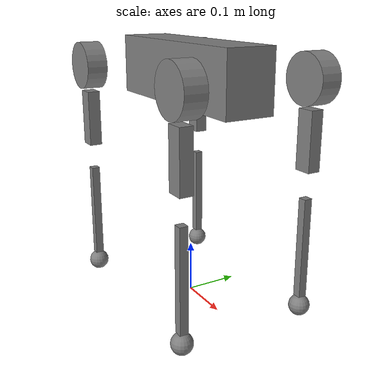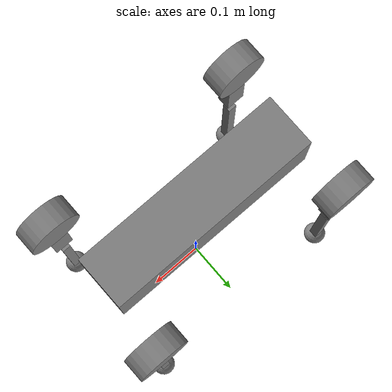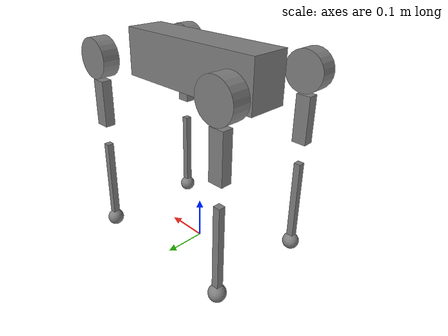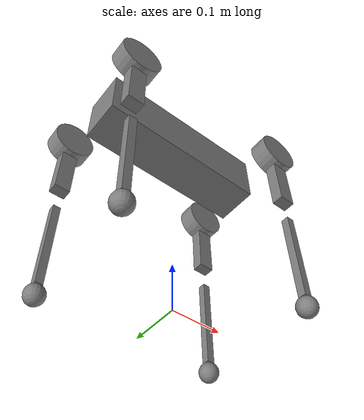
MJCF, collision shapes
<mujoco model="go1">
  <compiler angle="radian" meshdir="assets" autolimits="true"/>

  <default>
    <default class="go1">
      <default class="visual">
        <geom type="mesh" contype="0" conaffinity="0" group="2" material="dark"/>
      </default>
      <default class="collision">
        <geom group="3" contype="1" conaffinity="1"/>
        <default class="foot">
          <geom type="sphere" size="0.02"/>
        </default>
      </default>
    </default>
  </default>

  <asset>
    <material name="dark" rgba="0.2 0.2 0.2 1"/>

    <mesh class="go1" file="trunk.stl"/>
    <mesh class="go1" file="hip.stl"/>
    <mesh class="go1" file="thigh_mirror.stl"/>
    <mesh class="go1" file="calf.stl"/>
    <mesh class="go1" file="thigh.stl"/>
  </asset>

  <worldbody>
    <body name="base_link" pos="0 0 0.445" childclass="go1">
      <light pos="0 0 2" mode="trackcom"/>
      <camera name="tracking" pos="0.846 -1.3 0.316" xyaxes="0.866 0.500 0.000 -0.171 0.296 0.940" mode="trackcom"/>
      <camera name="top" pos="-1 0 1" xyaxes="0 -1 0 0.7 0 0.7" mode="trackcom"/>
      <camera name="side" pos="0 -1 .3" xyaxes="1 0 0 0 1 2" mode="trackcom"/>
      <camera name="back" pos="-1 0 .3" xyaxes="0 -1 0 1 0 2" mode="trackcom"/>
      <site name="head" pos="0.3 0 0" rgba="1 0 0 1" size="0.02" group="5"/>
      <inertial pos="0.0208661571134 0.00185967204212 -0.000469178990412" mass="5.56108"
        fullinertia="0.0181527417149 0.0680031785695 0.0774325305993 -0.000247077627157 -0.000291003623566 -4.19232897954e-05"/>
      <freejoint name="floating_base_joint"/>
      <geom class="visual" mesh="trunk"/>
      <geom name="trunk_collision" class="collision" type="box" size="0.1881 0.04675 0.057" pos="0 0 0"/>
      <site name="imu" pos="-0.01592 -0.06659 -0.00617" group="5"/>
      <body name="FR_hip" pos="0.1881 -0.04675 0">
        <inertial pos="-0.00491659852941 0.00762615 -8.865e-05" mass="0.68"
          fullinertia="0.000399379785729 0.000733419392376 0.000468422090576 1.45901056689e-05 1.24609911855e-06 -1.5753255103e-06"/>
        <joint name="FR_hip_joint" axis="1 0 0" range="-0.863 0.863"/>
        <geom class="visual" mesh="hip" quat="1 0 0 0"/>
        <geom name="FR_hip_collision" class="collision" type="cylinder" pos="0 -0.08 0"
          quat="0.70710678 0.70710678 0 0" size="0.046 0.02"/>
        <body name="FR_thigh" pos="0 -0.08 0">
          <inertial pos="-0.00304721506442 0.0193149950446 -0.0305004162537" mass="1.009"
            fullinertia="0.00459879646109 0.0046892240623 0.000817447856899 -6.13739128039e-05 -0.00022752911681 -0.000610808286618"/>
          <joint name="FR_thigh_joint" axis="0 1 0" range="-0.686 4.501"/>
          <geom class="visual" mesh="thigh_mirror"/>
          <geom name="FR_thigh_collision" class="collision" type="box" pos="0 0 -0.1065"
            quat="0.70710678 0 0.70710678 0" size="0.055 0.01225 0.017"/>
          <body name="FR_calf" pos="0 0 -0.213">
            <inertial pos="0.006197 0.001408 -0.116695" mass="0.135862"
              fullinertia="0.001088793059 0.001100428748 2.4787446e-05 -2.55679e-07 7.117814e-06 2.077264e-06"/>
            <joint name="FR_calf_joint" axis="0 1 0" range="-2.818 -0.888"/>
            <geom class="visual" mesh="calf"/>
            <geom name="FR_calf_collision" class="collision" type="box" pos="0 0 -0.0965"
              quat="0.70710678 0 0.70710678 0" size="0.0965 0.008 0.008"/>
            <site name="FR_site" pos="0 0 -0.213" type="sphere" size="0.023" group="5"/>
            <body name="FR_foot" pos="0 0 -0.213">
              <inertial pos="0 0 0" mass="0.06"
                fullinertia="9.600000000000001e-06 9.600000000000001e-06 9.600000000000001e-06 0 0 0"/>
              <geom name="FR" class="foot"/>
            </body>
          </body>
        </body>
      </body>
      <body name="FL_hip" pos="0.1881 0.04675 0">
        <inertial pos="-0.00491659852941 -0.00762615 -8.865e-05" mass="0.68"
          fullinertia="0.000399379785729 0.000733419392376 0.000468422090576 -1.45901056689e-05 1.24609911855e-06 1.5753255103e-06"/>
        <joint name="FL_hip_joint" axis="1 0 0" range="-0.863 0.863"/>
        <geom class="visual" mesh="hip"/>
        <geom name="FL_hip_collision" class="collision" type="cylinder" pos="0 0.08 0"
          quat="0.70710678 0.70710678 0 0" size="0.046 0.02"/>
        <body name="FL_thigh" pos="0 0.08 0">
          <inertial pos="-0.00304721506442 -0.0193149950446 -0.0305004162537" mass="1.009"
            fullinertia="0.00459879646109 0.0046892240623 0.000817447856899 6.13739128039e-05 -0.00022752911681 0.000610808286618"/>
          <joint name="FL_thigh_joint" axis="0 1 0" range="-0.686 4.501"/>
          <geom class="visual" mesh="thigh"/>
          <geom name="FL_thigh_collision" class="collision" type="box" pos="0 0 -0.1065"
            quat="0.70710678 0 0.70710678 0" size="0.055 0.01225 0.017"/>
          <body name="FL_calf" pos="0 0 -0.213">
            <inertial pos="0.006197 0.001408 -0.116695" mass="0.135862"
              fullinertia="0.001088793059 0.001100428748 2.4787446e-05 -2.55679e-07 7.117814e-06 2.077264e-06"/>
            <joint name="FL_calf_joint" axis="0 1 0" range="-2.818 -0.888"/>
            <geom class="visual" mesh="calf"/>
            <geom name="FL_calf_collision" class="collision" type="box" pos="0 0 -0.0965"
              quat="0.70710678 0 0.70710678 0" size="0.0965 0.008 0.008"/>
            <site name="FL_site" pos="0 0 -0.213" type="sphere" size="0.023" group="5"/>
            <body name="FL_foot" pos="0 0 -0.213">
              <inertial pos="0 0 0" mass="0.06"
                fullinertia="9.600000000000001e-06 9.600000000000001e-06 9.600000000000001e-06 0 0 0"/>
              <geom name="FL" class="foot"/>
            </body>
          </body>
        </body>
      </body>
      <body name="RR_hip" pos="-0.1881 -0.04675 0">
        <inertial pos="0.00491659852941 0.00762615 -8.865e-05" mass="0.68"
          fullinertia="0.000399379785729 0.000733419392376 0.000468422090576 -1.45901056689e-05 -1.24609911855e-06 -1.5753255103e-06"/>
        <joint name="RR_hip_joint" axis="1 0 0" range="-0.863 0.863"/>
        <geom class="visual" quat="0 0 0 -1" mesh="hip"/>
        <geom name="RR_hip_collision" class="collision" type="cylinder" pos="0 -0.08 0"
          quat="0.70710678 0.70710678 0 0" size="0.046 0.02"/>
        <body name="RR_thigh" pos="0 -0.08 0">
          <inertial pos="-0.00304721506442 0.0193149950446 -0.0305004162537" mass="1.009"
            fullinertia="0.00459879646109 0.0046892240623 0.000817447856899 -6.13739128039e-05 -0.00022752911681 -0.000610808286618"/>
          <joint name="RR_thigh_joint" axis="0 1 0" range="-0.686 4.501"/>
          <geom class="visual" mesh="thigh_mirror"/>
          <geom name="RR_thigh_collision" class="collision" type="box" pos="0 0 -0.1065"
            quat="0.70710678 0 0.70710678 0" size="0.055 0.01225 0.017"/>
          <body name="RR_calf" pos="0 0 -0.213">
            <inertial pos="0.006197 0.001408 -0.116695" mass="0.135862"
              fullinertia="0.001088793059 0.001100428748 2.4787446e-05 -2.55679e-07 7.117814e-06 2.077264e-06"/>
            <joint name="RR_calf_joint" axis="0 1 0" range="-2.818 -0.888"/>
            <geom class="visual" mesh="calf"/>
            <geom name="RR_calf_collision" class="collision" type="box" pos="0 0 -0.0965"
              quat="0.70710678 0 0.70710678 0" size="0.0965 0.008 0.008"/>
            <site name="RR_site" pos="0 0 -0.213" type="sphere" size="0.023" group="5"/>
            <body name="RR_foot" pos="0 0 -0.213">
              <inertial pos="0 0 0" mass="0.06"
                fullinertia="9.600000000000001e-06 9.600000000000001e-06 9.600000000000001e-06 0 0 0"/>
              <geom name="RR" class="foot"/>
            </body>
          </body>
        </body>
      </body>
      <body name="RL_hip" pos="-0.1881 0.04675 0">
        <inertial pos="0.00491659852941 -0.00762615 -8.865e-05" mass="0.68"
          fullinertia="0.000399379785729 0.000733419392376 0.000468422090576 1.45901056689e-05 -1.24609911855e-06 1.5753255103e-06"/>
        <joint name="RL_hip_joint" axis="1 0 0" range="-0.863 0.863"/>
        <geom class="visual" quat="0 0 1 0" mesh="hip"/>
        <geom name="RL_hip_collision" class="collision" type="cylinder" pos="0 0.08 0"
          quat="0.70710678 0.70710678 0 0" size="0.046 0.02"/>
        <body name="RL_thigh" pos="0 0.08 0">
          <inertial pos="-0.00304721506442 -0.0193149950446 -0.0305004162537" mass="1.009"
            fullinertia="0.00459879646109 0.0046892240623 0.000817447856899 6.13739128039e-05 -0.00022752911681 0.000610808286618"/>
          <joint name="RL_thigh_joint" axis="0 1 0" range="-0.686 4.501"/>
          <geom class="visual" mesh="thigh"/>
          <geom name="RL_thigh_collision" class="collision" type="box" pos="0 0 -0.1065"
            quat="0.70710678 0 0.70710678 0" size="0.055 0.01225 0.017"/>
          <body name="RL_calf" pos="0 0 -0.213">
            <inertial pos="0.006197 0.001408 -0.116695" mass="0.135862"
              fullinertia="0.001088793059 0.001100428748 2.4787446e-05 -2.55679e-07 7.117814e-06 2.077264e-06"/>
            <joint name="RL_calf_joint" axis="0 1 0" range="-2.818 -0.888"/>
            <geom class="visual" mesh="calf"/>
            <geom name="RL_calf_collision" class="collision" type="box" pos="0 0 -0.0965"
              quat="0.70710678 0 0.70710678 0" size="0.0965 0.008 0.008"/>
            <site name="RL_site" pos="0 0 -0.213" type="sphere" size="0.023" group="5"/>
            <body name="RL_foot" pos="0 0 -0.213">
              <inertial pos="0 0 0" mass="0.06"
                fullinertia="9.600000000000001e-06 9.600000000000001e-06 9.600000000000001e-06 0 0 0"/>
              <geom name="RL" class="foot"/>
            </body>
          </body>
        </body>
      </body>
    </body>
  </worldbody>
  <actuator>
    <motor name="FR_hip" joint="FR_hip_joint"/>
    <motor name="FR_thigh" joint="FR_thigh_joint"/>
    <motor name="FR_calf" joint="FR_calf_joint"/>
    <motor name="FL_hip" joint="FL_hip_joint"/>
    <motor name="FL_thigh" joint="FL_thigh_joint"/>
    <motor name="FL_calf" joint="FL_calf_joint"/>
    <motor name="RR_hip" joint="RR_hip_joint"/>
    <motor name="RR_thigh" joint="RR_thigh_joint"/>
    <motor name="RR_calf" joint="RR_calf_joint"/>
    <motor name="RL_hip" joint="RL_hip_joint"/>
    <motor name="RL_thigh" joint="RL_thigh_joint"/>
    <motor name="RL_calf" joint="RL_calf_joint"/>
  </actuator>
  <sensor>
    <jointpos name="FR_hip_pos" joint="FR_hip_joint"/>
    <jointpos name="FR_thigh_pos" joint="FR_thigh_joint"/>
    <jointpos name="FR_calf_pos" joint="FR_calf_joint"/>
    <jointpos name="FL_hip_pos" joint="FL_hip_joint"/>
    <jointpos name="FL_thigh_pos" joint="FL_thigh_joint"/>
    <jointpos name="FL_calf_pos" joint="FL_calf_joint"/>
    <jointpos name="RR_hip_pos" joint="RR_hip_joint"/>
    <jointpos name="RR_thigh_pos" joint="RR_thigh_joint"/>
    <jointpos name="RR_calf_pos" joint="RR_calf_joint"/>
    <jointpos name="RL_hip_pos" joint="RL_hip_joint"/>
    <jointpos name="RL_thigh_pos" joint="RL_thigh_joint"/>
    <jointpos name="RL_calf_pos" joint="RL_calf_joint"/>

    <jointvel name="FR_hip_vel" joint="FR_hip_joint"/>
    <jointvel name="FR_thigh_vel" joint="FR_thigh_joint"/>
    <jointvel name="FR_calf_vel" joint="FR_calf_joint"/>
    <jointvel name="FL_hip_vel" joint="FL_hip_joint"/>
    <jointvel name="FL_thigh_vel" joint="FL_thigh_joint"/>
    <jointvel name="FL_calf_vel" joint="FL_calf_joint"/>
    <jointvel name="RR_hip_vel" joint="RR_hip_joint"/>
    <jointvel name="RR_thigh_vel" joint="RR_thigh_joint"/>
    <jointvel name="RR_calf_vel" joint="RR_calf_joint"/>
    <jointvel name="RL_hip_vel" joint="RL_hip_joint"/>
    <jointvel name="RL_thigh_vel" joint="RL_thigh_joint"/>
    <jointvel name="RL_calf_vel" joint="RL_calf_joint"/>

    <jointactuatorfrc name="FR_hip_torque" joint="FR_hip_joint" noise="0.01"/>
    <jointactuatorfrc name="FR_thigh_torque" joint="FR_thigh_joint" noise="0.01"/>
    <jointactuatorfrc name="FR_calf_torque" joint="FR_calf_joint" noise="0.01"/>
    <jointactuatorfrc name="FL_hip_torque" joint="FL_hip_joint" noise="0.01"/>
    <jointactuatorfrc name="FL_thigh_torque" joint="FL_thigh_joint" noise="0.01"/>
    <jointactuatorfrc name="FL_calf_torque" joint="FL_calf_joint" noise="0.01"/>
    <jointactuatorfrc name="RR_hip_torque" joint="RR_hip_joint" noise="0.01"/>
    <jointactuatorfrc name="RR_thigh_torque" joint="RR_thigh_joint" noise="0.01"/>
    <jointactuatorfrc name="RR_calf_torque" joint="RR_calf_joint" noise="0.01"/>
    <jointactuatorfrc name="RL_hip_torque" joint="RL_hip_joint" noise="0.01"/>
    <jointactuatorfrc name="RL_thigh_torque" joint="RL_thigh_joint" noise="0.01"/>
    <jointactuatorfrc name="RL_calf_torque" joint="RL_calf_joint" noise="0.01"/>

    <framequat name="imu_quat" objtype="site" objname="imu"/>
    <gyro name="imu_ang_vel" site="imu"/>
    <accelerometer name="imu_lin_acc" site="imu"/>
    <framepos name="frame_pos" objtype="site" objname="imu"/>
    <framelinvel name="imu_lin_vel" objtype="site" objname="imu"/>
    <subtreeangmom name="root_angmom" body="base_link"/>
  </sensor>
</mujoco>
